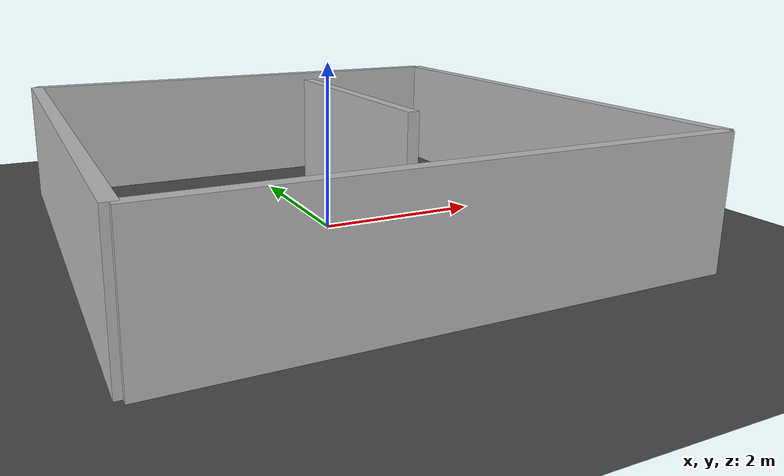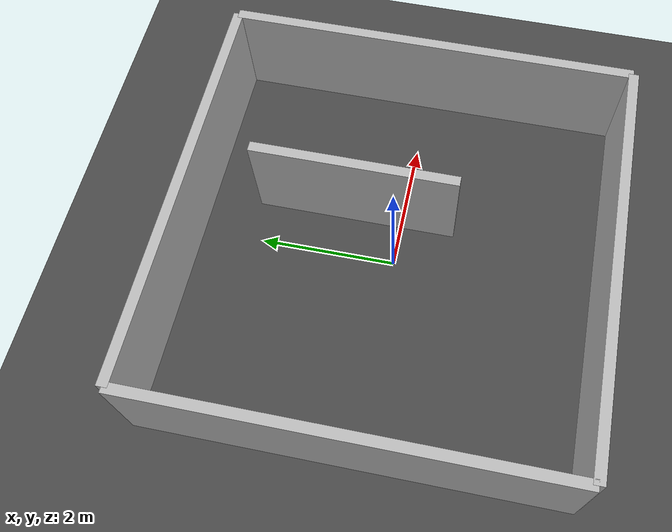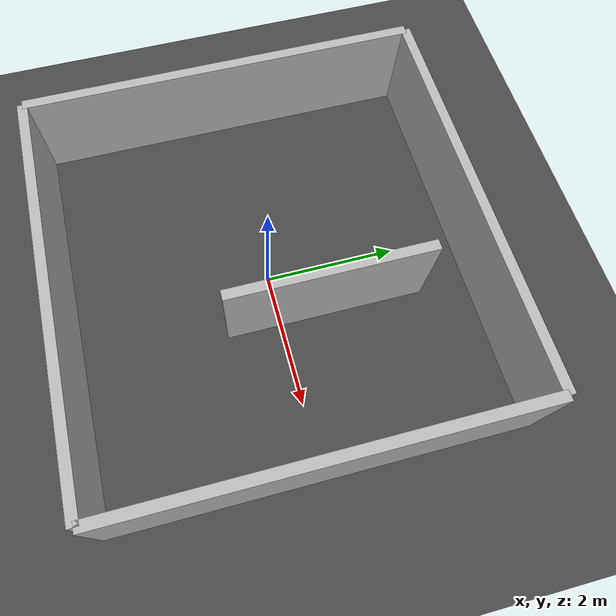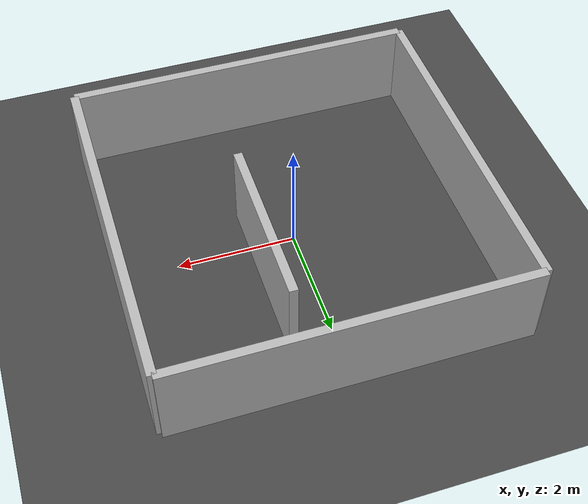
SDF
<?xml version="1.0"?>
<sdf version="1.9">
  <world name="indoor_maze">
    <gravity>0 0 -9.81</gravity>
    <physics name="1ms" type="ignored"><max_step_size>0.001</max_step_size><real_time_factor>1</real_time_factor></physics>
    <plugin filename="gz-sim-physics-system" name="gz::sim::systems::Physics"/>
    <plugin filename="gz-sim-user-commands-system" name="gz::sim::systems::UserCommands"/>
    <plugin filename="gz-sim-scene-broadcaster-system" name="gz::sim::systems::SceneBroadcaster"/>
    <plugin filename="gz-sim-sensors-system" name="gz::sim::systems::Sensors"><render_engine>ogre2</render_engine></plugin>
    <plugin filename="gz-sim-imu-system" name="gz::sim::systems::Imu"/>
    <light type="directional" name="sun"><pose>0 0 10 0 0 0</pose><cast_shadows>true</cast_shadows><direction>-0.4 0.2 -0.9</direction></light>
    <model name="floor"><static>true</static><link name="link"><collision name="collision"><geometry><plane><normal>0 0 1</normal><size>20 20</size></plane></geometry></collision><visual name="visual"><geometry><plane><normal>0 0 1</normal><size>20 20</size></plane></geometry><material><ambient>0.18 0.18 0.18 1</ambient><diffuse>0.28 0.28 0.28 1</diffuse></material></visual></link></model>
    <model name="wall_north"><static>true</static><pose>0 3 0.75 0 0 0</pose><link name="link"><collision name="c"><geometry><box><size>6 0.15 1.5</size></box></geometry></collision><visual name="v"><geometry><box><size>6 0.15 1.5</size></box></geometry></visual></link></model>
    <model name="wall_south"><static>true</static><pose>0 -3 0.75 0 0 0</pose><link name="link"><collision name="c"><geometry><box><size>6 0.15 1.5</size></box></geometry></collision><visual name="v"><geometry><box><size>6 0.15 1.5</size></box></geometry></visual></link></model>
    <model name="wall_east"><static>true</static><pose>3 0 0.75 0 0 0</pose><link name="link"><collision name="c"><geometry><box><size>0.15 6 1.5</size></box></geometry></collision><visual name="v"><geometry><box><size>0.15 6 1.5</size></box></geometry></visual></link></model>
    <model name="wall_west"><static>true</static><pose>-3 0 0.75 0 0 0</pose><link name="link"><collision name="c"><geometry><box><size>0.15 6 1.5</size></box></geometry></collision><visual name="v"><geometry><box><size>0.15 6 1.5</size></box></geometry></visual></link></model>
    <model name="divider"><static>true</static><pose>0.7 0.7 0.75 0 0 0</pose><link name="link"><collision name="c"><geometry><box><size>0.15 3 1.5</size></box></geometry></collision><visual name="v"><geometry><box><size>0.15 3 1.5</size></box></geometry></visual></link></model>
  </world>
</sdf>
